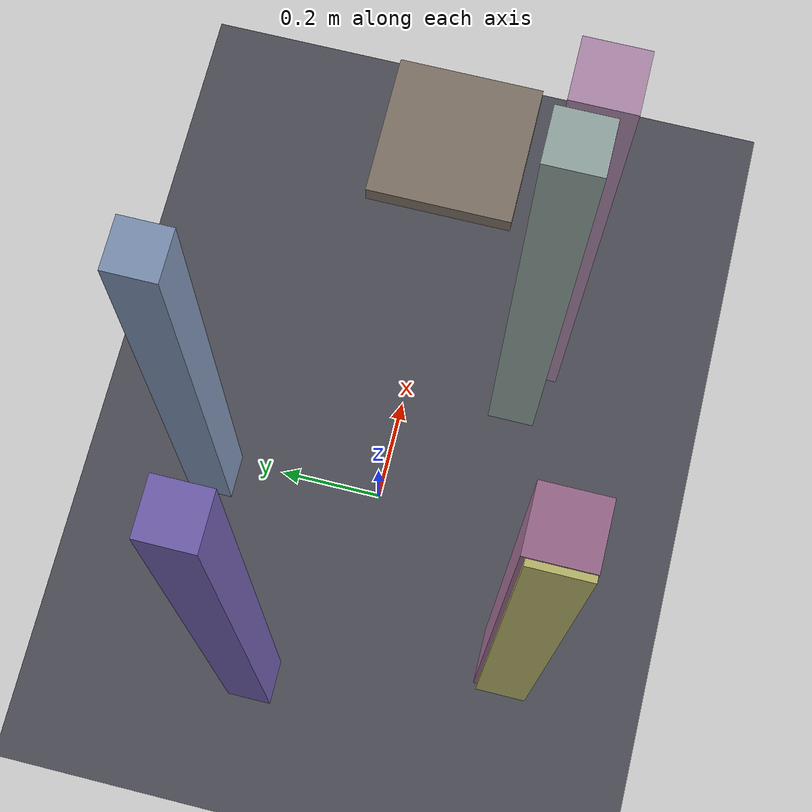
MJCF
<mujoco model="pillar_avoid_10">
  <compiler angle="radian" autolimits="true" boundmass="0" balanceinertia="true"/>
  <option impratio="10" gravity="0 0 -9.8" integrator="implicitfast" cone="elliptic" jacobian="sparse" noslip_iterations="4">
    <flag multiccd="enable" contact="enable" warmstart="enable"/>
  </option>
  <size njmax="6000" nconmax="6000"/>
  <visual><global offwidth="1280" offheight="720"/><map znear="0.001"/>
    <headlight ambient="0.45 0.45 0.45" diffuse="0.6 0.6 0.6"/></visual>
  <worldbody>
    <light pos="0.4 0.4 3" dir="0 0 -1" diffuse="0.7 0.7 0.7"/>
    <!-- Obstacle-avoidance variant 10: 6 tall PHYSICAL pillars; placements blocking >10%
         of exo-camera sightlines to the arm excluded (training view preserved). -->
    <body name="pillars" pos="0 0 0"><geom name="floor" type="plane" size="5 5 0.1" pos="0 0 0" rgba="0.30 0.30 0.34 1" contype="8" conaffinity="15"/><geom name="obj_pad" type="box" pos="0.60 0 0.42" size="0.14 0.14 0.02" rgba="0.5 0.45 0.4 1" contype="8" conaffinity="15"/><geom name="pillar_1" type="box" pos="0.376 -0.245 0.608" size="0.052 0.052 0.608" contype="8" conaffinity="15" rgba="0.69 0.54 0.68 1"/><geom name="pillar_2" type="box" pos="0.267 -0.224 0.607" size="0.047 0.047 0.607" contype="8" conaffinity="15" rgba="0.58 0.66 0.64 1"/><geom name="pillar_3" type="box" pos="-0.415 0.148 0.693" size="0.042 0.042 0.693" contype="8" conaffinity="15" rgba="0.44 0.37 0.68 1"/><geom name="pillar_4" type="box" pos="-0.031 0.333 0.599" size="0.043 0.043 0.599" contype="8" conaffinity="15" rgba="0.49 0.57 0.70 1"/><geom name="pillar_5" type="box" pos="-0.283 -0.327 0.593" size="0.049 0.049 0.593" contype="8" conaffinity="15" rgba="0.73 0.72 0.42 1"/><geom name="pillar_6" type="box" pos="-0.268 -0.324 0.595" size="0.053 0.053 0.595" contype="8" conaffinity="15" rgba="0.60 0.41 0.55 1"/></body>
  </worldbody>
</mujoco>
